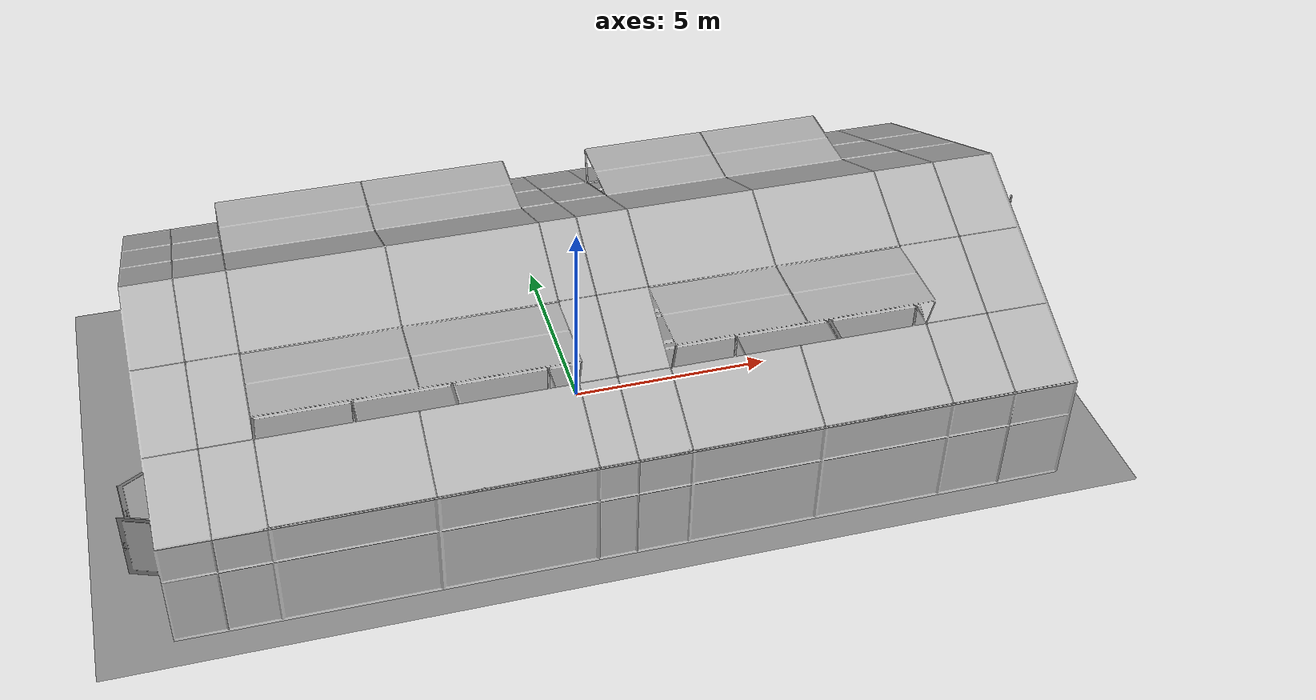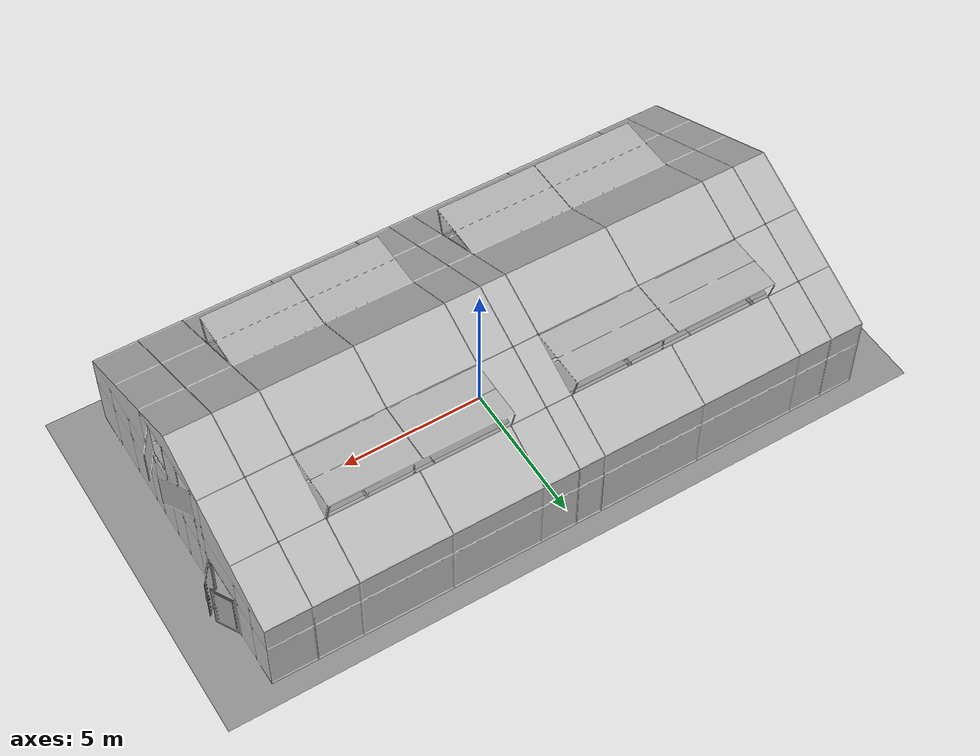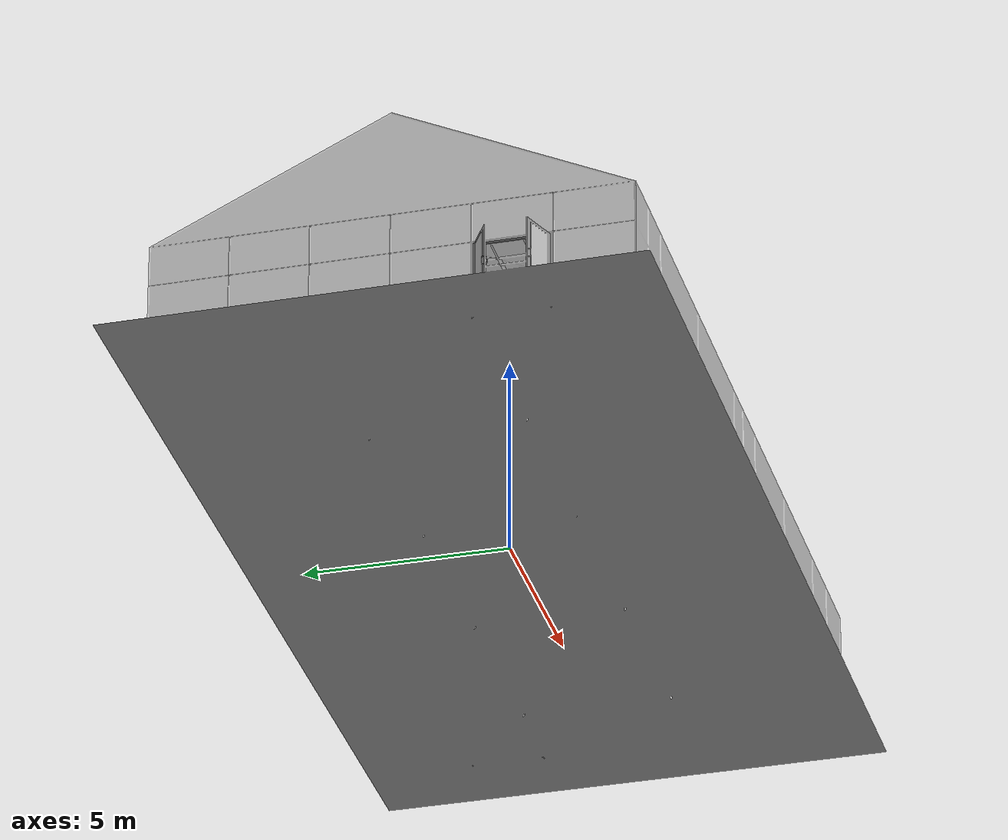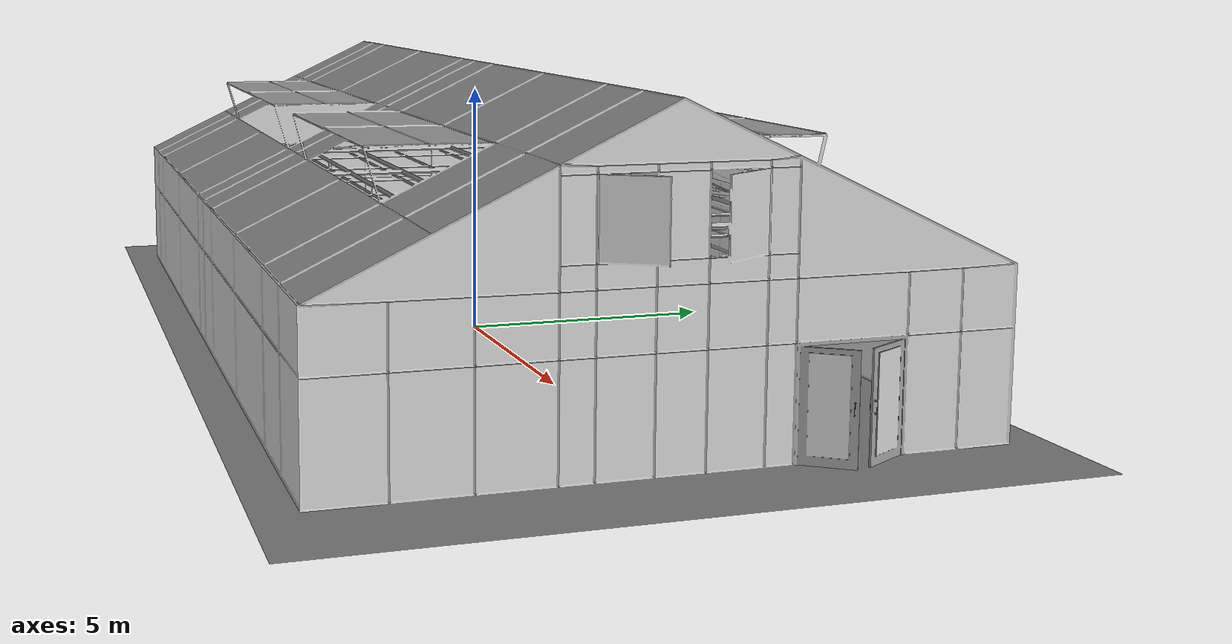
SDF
<sdf version="1.6">
  <model name="greenhouse_structure">
    <static>true</static>

    <link name="link">
      <collision name="collision">
        <geometry>
          <mesh>
            <uri>model://greenhouse_structure/meshes/Structure1.stl</uri>
          </mesh>
        </geometry>
      </collision>

      <visual name= "structure">
        <geometry>
          <mesh>
           <uri>model://greenhouse_structure/meshes/Structure.dae</uri>
          </mesh>
        </geometry>
      </visual>
    </link>
  </model>
</sdf>
